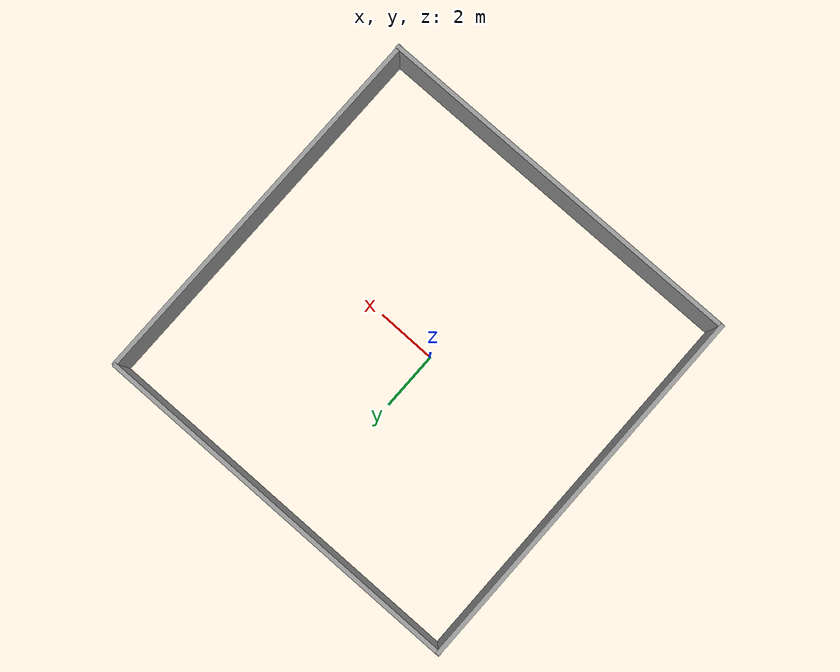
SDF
<sdf version="1.7">
 <world name="default">
  <plugin name="ros_interface_plugin" filename="librotors_gazebo_ros_interface_plugin.so"/>
  <light name="sun" type="directional">
   <pose>0 0 10 0 -0 0</pose>
   <diffuse>0.8 0.8 0.8 1</diffuse>
   <specular>0.2 0.2 0.2 1</specular>
   <attenuation>
    <range>1000</range>
    <constant>0.9</constant>
    <linear>0.01</linear>
    <quadratic>0.001</quadratic>
   </attenuation>
   <direction>-0.5 0.1 -0.9</direction>
   <spot><inner_angle>0</inner_angle><outer_angle>0</outer_angle><falloff>0</falloff></spot>
  </light>
  <gravity>0 0 -9.8</gravity>
  <magnetic_field>6e-06 2.3e-05 -4.2e-05</magnetic_field>
  <atmosphere type="adiabatic"/>
  <physics type="ode">
   <max_step_size>0.001</max_step_size>
   <real_time_factor>1</real_time_factor>
   <real_time_update_rate>1000</real_time_update_rate>
  </physics>
  <scene><ambient>0.4 0.4 0.4 1</ambient><background>0.7 0.7 0.7 1</background><shadows>1</shadows></scene>
  <spherical_coordinates>
   <surface_model>EARTH_WGS84</surface_model>
   <latitude_deg>0</latitude_deg>
   <longitude_deg>0</longitude_deg>
   <elevation>0</elevation>
   <heading_deg>0</heading_deg>
  </spherical_coordinates>
  <model name="unit_box">
   <static>true</static>
   <pose>-6.00619 0.081231 1.00426 0.000555 -0.00272 0.000956</pose>
   <link name="link">
    <inertial>
     <mass>1</mass>
     <inertia>
      <ixx>0.166667</ixx>
      <ixy>0</ixy>
      <ixz>0</ixz>
      <iyy>0.166667</iyy>
      <iyz>0</iyz>
      <izz>0.166667</izz>
     </inertia>
    </inertial>
    <collision name="collision"><geometry><box><size>0.143784 12.9544 2.03826</size></box></geometry></collision>
    <visual name="visual">
     <geometry><box><size>0.143784 12.9544 2.03826</size></box></geometry>
     <material>
      <script><name>Gazebo/Grey</name><uri>file://media/materials/scripts/gazebo.material</uri></script>
     </material>
    </visual>
   </link>
  </model>
  <model name="unit_box_clone">
   <static>true</static>
   <pose>6.8506 0.072859 1.00443 0.000555 -0.00272 0.000956</pose>
   <link name="link">
    <inertial>
     <mass>1</mass>
     <inertia>
      <ixx>0.166667</ixx>
      <ixy>0</ixy>
      <ixz>0</ixz>
      <iyy>0.166667</iyy>
      <iyz>0</iyz>
      <izz>0.166667</izz>
     </inertia>
    </inertial>
    <collision name="collision"><geometry><box><size>0.143784 12.9544 2.03826</size></box></geometry></collision>
    <visual name="visual">
     <geometry><box><size>0.143784 12.9544 2.03826</size></box></geometry>
     <material>
      <script><name>Gazebo/Grey</name><uri>file://media/materials/scripts/gazebo.material</uri></script>
     </material>
    </visual>
   </link>
  </model>
  <model name="unit_box_clone_0">
   <static>true</static>
   <pose>0.472744 -6.32656 1.00358 0.00272 0.000555 -1.56984</pose>
   <link name="link">
    <inertial>
     <mass>1</mass>
     <inertia>
      <ixx>0.166667</ixx>
      <ixy>0</ixy>
      <ixz>0</ixz>
      <iyy>0.166667</iyy>
      <iyz>0</iyz>
      <izz>0.166667</izz>
     </inertia>
    </inertial>
    <collision name="collision"><geometry><box><size>0.143784 12.9544 2.03826</size></box></geometry></collision>
    <visual name="visual">
     <geometry><box><size>0.143784 12.9544 2.03826</size></box></geometry>
     <material>
      <script><name>Gazebo/Grey</name><uri>file://media/materials/scripts/gazebo.material</uri></script>
     </material>
    </visual>
   </link>
  </model>
  <model name="unit_box_clone_0_clone">
   <static>true</static>
   <pose>0.386352 6.51368 1.00358 0.00272 0.000555 -1.56984</pose>
   <link name="link">
    <inertial>
     <mass>1</mass>
     <inertia>
      <ixx>0.166667</ixx>
      <ixy>0</ixy>
      <ixz>0</ixz>
      <iyy>0.166667</iyy>
      <iyz>0</iyz>
      <izz>0.166667</izz>
     </inertia>
    </inertial>
    <collision name="collision"><geometry><box><size>0.143784 12.9544 2.03826</size></box></geometry></collision>
    <visual name="visual">
     <geometry><box><size>0.143784 12.9544 2.03826</size></box></geometry>
     <material>
      <script><name>Gazebo/Grey</name><uri>file://media/materials/scripts/gazebo.material</uri></script>
     </material>
    </visual>
   </link>
  </model>
 </world>
</sdf>
